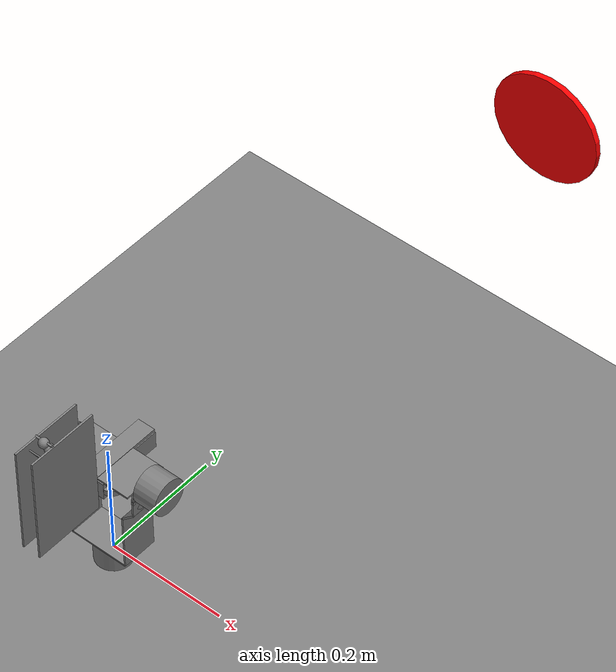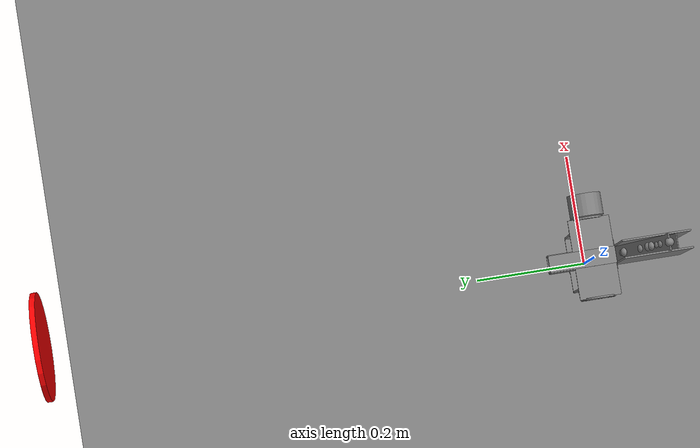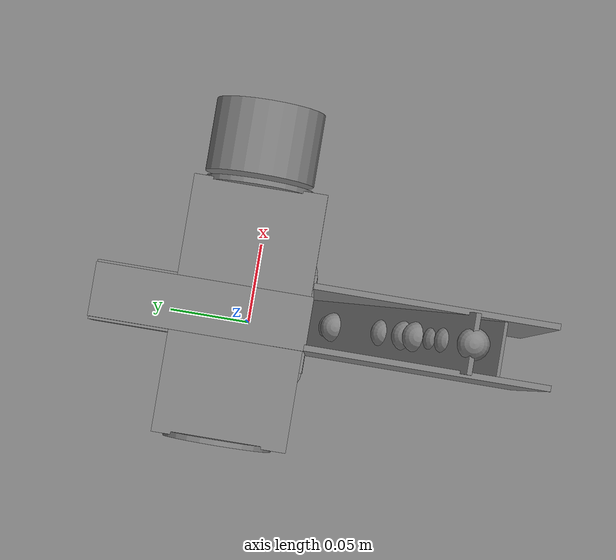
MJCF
<mujoco>

    <compiler coordinate="local" angle="degree" inertiafromgeom="auto"/>

    <option timestep="0.0005" apirate="100" wind="0 0 0" density="1.2" viscosity="0" cone="elliptic">
        <flag sensornoise="enable"/>
    </option>

    <worldbody>

        <light diffuse=".5 .5 .5" pos="0 0 3" dir="0 0 -1"/>
        <geom type="plane" pos="0 0 -0.325" size="1 1 0.1" contype="1" conaffinity="1"/>

        <body name="base" pos="0 0 0">
            <geom type="cylinder" condim="6" size="0.03 0.02" friction="1 0.005 0.0001"/>
            <body name="frame" pos="0 0 0.0215">
                <geom name="bottom" type="box" condim="3" size="0.05 0.03 0.0015" friction="1 0.005 0.0001"/>

                <body name="right" pos="0.05 0 0.05">
                    <geom name="rside" type="box" condim="3" size="0.0015 0.03 0.05" friction="1 0.005 0.0001"/>
                    <geom name="rtop_slope" type="box" condim="3" pos="0.0106 0 0.0606" size="0.0015 0.03 0.015" euler="0 45 0" friction="1 0.005 0.0001"/>

                    <body name="rtop_platform" pos="0.0212 0 0.0712">
                        <geom name="rstand" type="box" condim="3" pos="0 0 0.015" size="0.0015 0.03 0.015" friction="1 0.005 0.0001"/>
                        <geom name="rcircle" type="cylinder" condim="3" pos="0 0 0.03" size="0.03 0.0015" euler="0 90 0" friction="1 0.005 0.0001"/>

                        <body name="gun_platform" pos="0 0 0.045">
                            <geom type="cylinder" condim="3" pos="0.0227 0 0" size="0.03 0.02" euler="0 90 0" friction="1 0.005 0.0001"/>
                            <joint name="motor2" axis="1 0 0" limited="true" range="-45 0" stiffness="0.01" frictionloss="0.01" damping=".06"/>

                            <body name="gun" pos="0 0 0">
                                <geom name="rotating_platform" type="box" condim="3" pos="-0.0712 -0.0015 0" size="0.0712 0.0370 0.0015" friction="1 0.005 0.0001"/>

                                <body name="rod" pos="-0.0712 0 0">
                                    <body name="bullet_holder" pos="0 0 0.0475">
                                        <geom type="box" condim="3" pos="0 -0.090 -0.00400" size="0.0150 0.0010 0.0900" euler="30 0 0" contype="1" conaffinity="1"/>
                                        <geom type="box" condim="3" pos="0 -0.080 0.02" size="0.0150 0.0015 0.0800" euler="30 0 0" contype="1" conaffinity="1"/>
                                        <geom type="box" condim="3" pos="-0.0150 -0.1 -0.01" size="0.0600 0.0015 0.0950" euler="0 0 90" contype="1" conaffinity="1"/>
                                        <geom type="box" condim="3" pos="0.0150 -0.1 -0.01" size="0.0600 0.0015 0.0950" euler="0 0 90" contype="1" conaffinity="1"/>
                                        <body name="bullet_feeder" pos="0 -0.0670 -0.03">
                                            <body name="barrel" pos="0 0.0270 -0.0350">
                                                <geom name="bottom_barrel" type="box" condim="3" pos="0 0.0600 -0.0150" size="0.015 0.0600 0.0015" friction="1 0.005 0.0001"/>
                                                <geom name="top_barrel" type="box" condim="3" pos="0 0.0600 0.0150" size="0.015 0.0600 0.0050" friction="1 0.005 0.0001"/>
                                                <geom name="right_barrel" type="box" condim="3" pos="0.0150 0.0600 0" size="0.0015 0.0600 0.015" friction="1 0.005 0.0001"/>
                                                <geom name="left_barrel" type="box" condim="3" pos="-0.0150 0.0600 0" size="0.0015 0.0600 0.015" friction="1 0.005 0.0001"/>

                                                <body name="shooting_mechanism" pos="0 0.0200 0">
                                                    <geom name="connector_right" type="box" condim="3" pos="0.0210 0 0" size="0.006 0.0200 0.015" friction="1 0.005 0.0001"/>
                                                    <geom name="connector_left" type="box" condim="3" pos="-0.0210 0 0" size="0.006 0.0200 0.015" friction="1 0.005 0.0001"/>

                                                    <body name="rFriction_wheels" pos="0.0250 0 0">
                                                        <geom name="rightWheel" type="cylinder" condim="3" size="0.02 0.005" friction="5 0.01 0.01"/>
                                                        <joint name="rFricWheel" axis="0 0 1" limited="false" damping=".05"/>
                                                    </body>

                                                    <body name="lFriction_wheels" pos="-0.0250 0 0">
                                                        <geom name="lFricWheel" type="cylinder" condim="3" size="0.02 0.005" friction="5 0.01 0.001"/>
                                                        <joint name="lFricWheel" axis="0 0 1" limited="false" damping=".05"/>
                                                    </body>

                                                    <body name="bullet_pos" pos="0 -0.02 0">
                                                    </body>
                                                </body>

                                                <body name="camera" pos="0 0.12 0">
                                                    <camera name="cam1" mode="fixed" euler="90 0 0" pos="0 0 0"/>
                                                </body>

                                            </body>
                                        </body>
                                    </body>
                                </body>
                            </body>
                        </body>
                    </body>
                </body>

                <body name="left" pos="-0.05 0 0.05">
                    <geom name="lside" type="box" condim="3" size="0.0015 0.03 0.05" friction="1 0.005 0.0001"/>
                    <geom name="ltop_slope" type="box" condim="3" pos="-0.0106 0 0.0606" size="0.0015 0.03 0.015" euler="0 -45 0" friction="1 0.005 0.0001"/>

                    <body name="ltop_platform" pos="-0.0212 0 0.0712">
                        <geom name="lstand" type="box" condim="3" pos="0 0 0.015" size="0.0015 0.03 0.015" friction="1 0.005 0.0001"/>
                        <geom name="lcircle" type="cylinder" condim="3" pos="0 0 0.03" size="0.03 0.0015" euler="0 90 0" friction="1 0.005 0.0001"/>
                    </body>
                </body>

                <joint name="motor1" axis="0 0 1" limited="true" range="-45 45" stiffness="0.01" frictionloss="0.01" damping=".06"/>
            </body>
        </body>

        <body name="bullet" pos="0 -0.050 -0.33">
            <geom type="sphere" size="0.008" pos="0 0 0.5" mass="0.08" contype="1" conaffinity="1"/>
            <joint type="slide" pos="0 0 0" axis="1 0 1"/>
            <joint type="slide" pos="0 0 0" axis="0 1 1"/>
            <joint type="slide" pos="0 0 0" axis="0 0 1"/>
        </body>
        <body name="bullet1" pos="0 -0.051 -0.32">
            <geom type="sphere" size="0.008" pos="0 0 0.5" mass="0.08" contype="1" conaffinity="1"/>
            <joint type="slide" pos="0 0 0" axis="1 0 1"/>
            <joint type="slide" pos="0 0 0" axis="0 1 1"/>
            <joint type="slide" pos="0 0 0" axis="0 0 1"/>
        </body>
        <body name="bullet2" pos="0 -0.052 -0.31">
            <geom type="sphere" size="0.008" pos="0 0 0.5" mass="0.08" contype="1" conaffinity="1"/>
            <joint type="slide" pos="0 0 0" axis="1 0 1"/>
            <joint type="slide" pos="0 0 0" axis="0 1 1"/>
            <joint type="slide" pos="0 0 0" axis="0 0 1"/>
        </body>
        <body name="bullet3" pos="0 -0.053 -0.30">
            <geom type="sphere" size="0.008" pos="0 0 0.5" mass="0.08" contype="1" conaffinity="1"/>
            <joint type="slide" pos="0 0 0" axis="1 0 1"/>
            <joint type="slide" pos="0 0 0" axis="0 1 1"/>
            <joint type="slide" pos="0 0 0" axis="0 0 1"/>
        </body>
        <body name="bullet4" pos="0 -0.054 -0.29">
            <geom type="sphere" size="0.008" pos="0 0 0.5" mass="0.08" contype="1" conaffinity="1"/>
            <joint type="slide" pos="0 0 0" axis="1 0 1"/>
            <joint type="slide" pos="0 0 0" axis="0 1 1"/>
            <joint type="slide" pos="0 0 0" axis="0 0 1"/>
        </body>
        <body name="bullet5" pos="0 -0.080 -0.27">
            <geom type="sphere" size="0.008" pos="0 0 0.5" mass="0.08" contype="1" conaffinity="1"/>
            <joint type="slide" pos="0 0 0" axis="1 0 1"/>
            <joint type="slide" pos="0 0 0" axis="0 1 1"/>
            <joint type="slide" pos="0 0 0" axis="0 0 1"/>
        </body>
        <body name="bullet6" pos="0 -0.080 -0.25">
            <geom type="sphere" size="0.008" pos="0 0 0.5" mass="0.08" contype="1" conaffinity="1"/>
            <joint type="slide" pos="0 0 0" axis="1 0 1"/>
            <joint type="slide" pos="0 0 0" axis="0 1 1"/>
            <joint type="slide" pos="0 0 0" axis="0 0 1"/>
        </body>
        <body name="bullet7" pos="0 -0.090 -0.23">
            <geom type="sphere" size="0.008" pos="0 0 0.5" mass="0.08" contype="1" conaffinity="1"/>
            <joint type="slide" pos="0 0 0" axis="1 0 1"/>
            <joint type="slide" pos="0 0 0" axis="0 1 1"/>
            <joint type="slide" pos="0 0 0" axis="0 0 1"/>
        </body>
        <body name="bullet8" pos="0 -0.095 -0.22">
            <geom type="sphere" size="0.008" pos="0 0 0.5" mass="0.08" contype="1" conaffinity="1"/>
            <joint type="slide" pos="0 0 0" axis="1 0 1"/>
            <joint type="slide" pos="0 0 0" axis="0 1 1"/>
            <joint type="slide" pos="0 0 0" axis="0 0 1"/>
        </body>
        <body name="bullet9" pos="0 -0.105 -0.21">
            <geom type="sphere" size="0.008" pos="0 0 0.5" mass="0.08" contype="1" conaffinity="1"/>
            <joint type="slide" pos="0 0 0" axis="1 0 1"/>
            <joint type="slide" pos="0 0 0" axis="0 1 1"/>
            <joint type="slide" pos="0 0 0" axis="0 0 1"/>
        </body>
        <body name="bullet10" pos="0 -0.110 -0.20">
            <geom type="sphere" size="0.008" pos="0 0 0.5" mass="0.08" contype="1" conaffinity="1"/>
            <joint type="slide" pos="0 0 0" axis="1 0 1"/>
            <joint type="slide" pos="0 0 0" axis="0 1 1"/>
            <joint type="slide" pos="0 0 0" axis="0 0 1"/>
        </body>
        <body name="bullet11" pos="0 -0.120 -0.18">
            <geom type="sphere" size="0.008" pos="0 0 0.5" mass="0.08" contype="1" conaffinity="1"/>
            <joint type="slide" pos="0 0 0" axis="1 0 1"/>
            <joint type="slide" pos="0 0 0" axis="0 1 1"/>
            <joint type="slide" pos="0 0 0" axis="0 0 1"/>
        </body>

        <body name="target" pos="0 1 0.1">
            <site name="detection" rgba="1 0 0 1" type="cylinder" size="0.1 0.005" euler="90 0 0"/>
            <geom rgba="1 0 0 1" type="cylinder" size="0.1 0.005" euler="90 0 0" contype="1" conaffinity="1" mass="1"/>
            <joint name="target_slidez" type="slide" pos="0 0 0" axis="0 0 1" range="-10.3213 10.3" damping="1.0"/>
            <joint name="target_slidex" type="slide" pos="0 0 0" axis="1 0 0" range="-10.3213 10.3" damping="1.0"/>
        </body>

    </worldbody>

    <actuator>
        <velocity joint="motor1" gear="1" forcelimited="true" forcerange="-10 10" ctrllimited="true" ctrlrange="-20 20"/>
        <velocity joint="motor2" gear="1" forcelimited="true" forcerange="-10 10" ctrllimited="true" ctrlrange="-10 10"/>
        <velocity joint="lFricWheel" gear="1" forcelimited="true" forcerange="99 100"/>
        <velocity joint="rFricWheel" gear="1" forcelimited="true" forcerange="-100 -99"/>
    </actuator>

    <sensor>
        <jointpos name="motor1_encoder" joint="motor1" noise="0.001"/>
        <jointpos name="motor2_encoder" joint="motor2" noise="0.001"/>
        <touch name="bulletDetect" site="detection"/>
    </sensor>

</mujoco>
